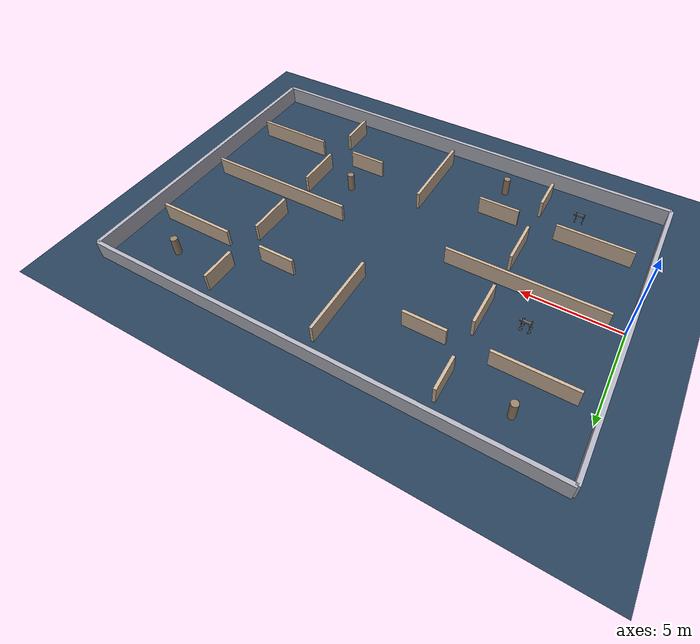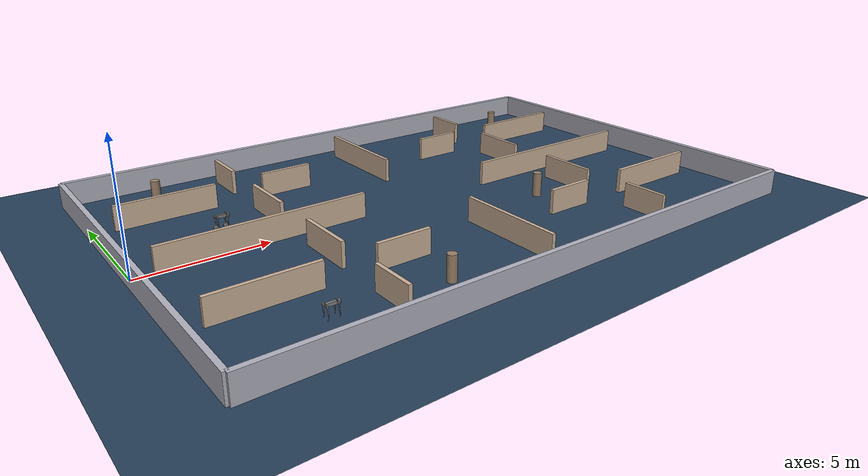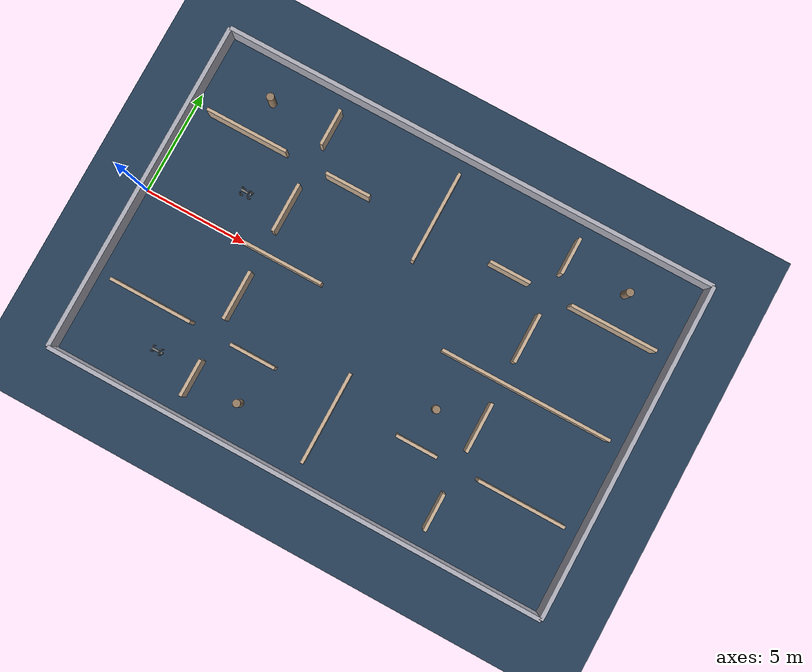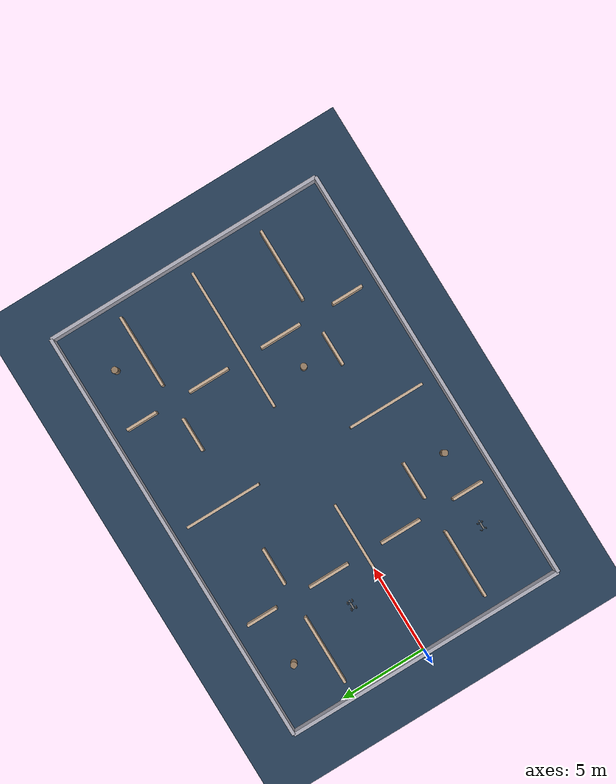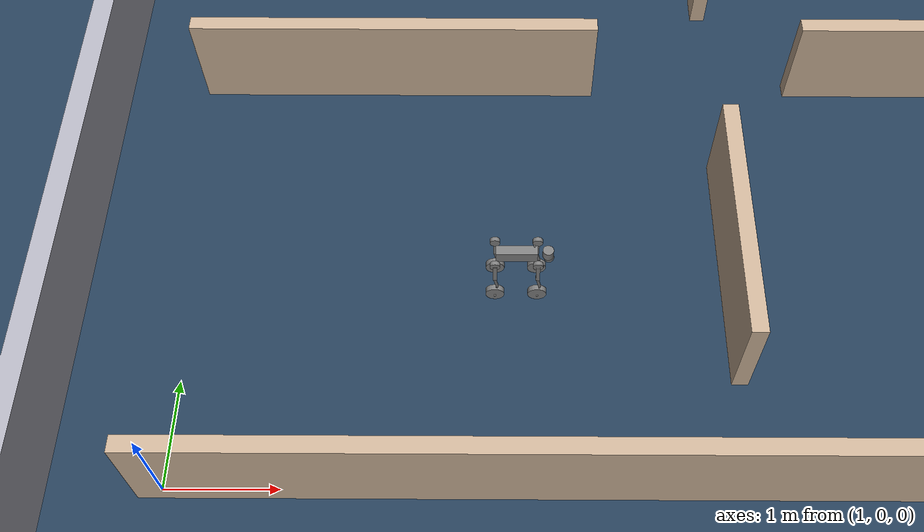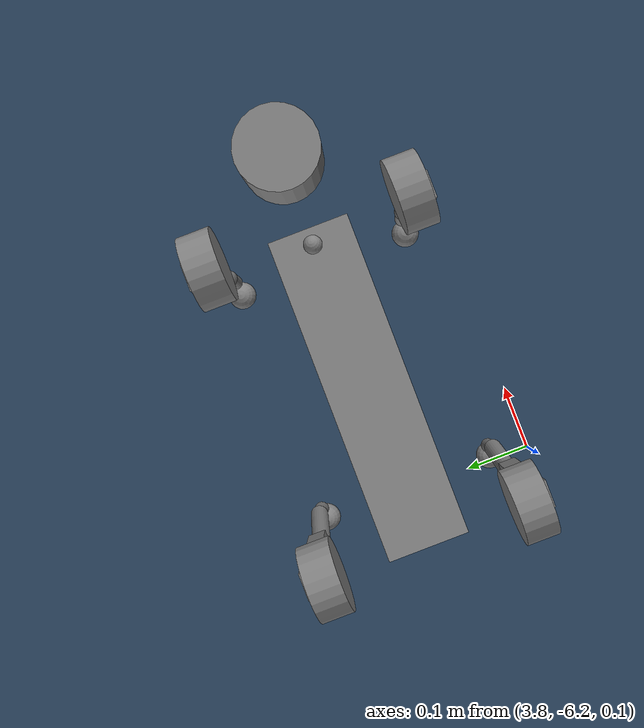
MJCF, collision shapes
<mujoco model="demo3_mixed_rooms_seed101">
  <compiler angle="radian" meshdir="../assets" autolimits="true"/>

  <option timestep="0.002" gravity="0 0 -9.81" integrator="implicitfast"
          cone="elliptic" impratio="100"/>

  <statistic center="12 0 0.5" extent="16"/>

  <visual>
    <headlight diffuse="0.6 0.6 0.6" ambient="0.3 0.3 0.3" specular="0 0 0"/>
    <rgba haze="0.15 0.25 0.35 1"/>
    <global azimuth="-130" elevation="-20" offwidth="1920" offheight="1080"/>
    <quality shadowsize="4096" offsamples="8"/>
    <map shadowscale="0.5" shadowclip="1"/>
  </visual>

  <default>
    <default class="go2">
      <geom friction="0.4" margin="0.001" condim="1"/>
      <joint axis="0 1 0" damping="0.1" armature="0.01" frictionloss="0.2"/>
      <motor ctrlrange="-23.7 23.7"/>
      <default class="abduction">
        <joint axis="1 0 0" range="-1.0472 1.0472"/>
      </default>
      <default class="hip">
        <default class="front_hip">
          <joint range="-1.5708 3.4907"/>
        </default>
        <default class="back_hip">
          <joint range="-0.5236 4.5379"/>
        </default>
      </default>
      <default class="knee">
        <joint range="-2.7227 -0.83776"/>
        <motor ctrlrange="-45.43 45.43"/>
      </default>
      <default class="visual">
        <geom type="mesh" contype="0" conaffinity="0" group="2"/>
      </default>
      <default class="collision">
        <geom group="3"/>
        <default class="foot">
          <geom size="0.022" pos="-0.002 0 -0.2264" priority="1" condim="6"
            friction="0.8 0.02 0.01"/>
        </default>
      </default>
    </default>
    <default class="go2_menagerie">
      <geom friction="0.6" margin="0.001" condim="1"/>
      <joint axis="0 1 0" damping="2" armature="0.01" frictionloss="0.2"/>
      <motor ctrlrange="-23.7 23.7"/>
      <default class="menagerie_abduction">
        <joint axis="1 0 0" range="-1.0472 1.0472"/>
      </default>
      <default class="menagerie_hip">
        <default class="menagerie_front_hip">
          <joint range="-1.5708 3.4907"/>
        </default>
        <default class="menagerie_back_hip">
          <joint range="-0.5236 4.5379"/>
        </default>
      </default>
      <default class="menagerie_knee">
        <joint range="-2.7227 -0.83776"/>
        <motor ctrlrange="-45.43 45.43"/>
      </default>
      <default class="menagerie_visual">
        <geom type="mesh" contype="0" conaffinity="0" group="2"/>
      </default>
      <default class="menagerie_collision">
        <geom group="3"/>
        <default class="menagerie_foot">
          <geom size="0.022" pos="-0.002 0 -0.213" priority="1"
                solimp="0.015 1 0.022" condim="6"
                friction="0.8 0.02 0.01"/>
        </default>
      </default>
    </default>
    <default class="world">
      <geom contype="1" conaffinity="1"/>
    </default>
  </default>

  <asset>
    <!-- Skybox -->
    <texture type="skybox" builtin="gradient" rgb1="0.3 0.5 0.7" rgb2="0 0 0"
             width="512" height="3072"/>

    <!-- Ground -->
    <texture type="2d" name="groundplane" builtin="checker" mark="edge"
             rgb1="0.2 0.3 0.4" rgb2="0.1 0.2 0.3" markrgb="0.8 0.8 0.8"
             width="300" height="300"/>
    <material name="groundplane" texture="groundplane" texuniform="true"
              texrepeat="5 5" reflectance="0.2"/>

    <!-- Robot materials -->
    <material name="metal" rgba=".9 .95 .95 1"/>
    <material name="black" rgba="0 0 0 1"/>
    <material name="white" rgba="1 1 1 1"/>
    <material name="gray" rgba="0.671705 0.692426 0.774270 1"/>

    <!-- Robot mesh assets (official Unitree OBJ) -->
    <mesh file="base_0.obj"/>
    <mesh file="base_1.obj"/>
    <mesh file="base_2.obj"/>
    <mesh file="base_3.obj"/>
    <mesh file="base_4.obj"/>
    <mesh file="hip_0.obj"/>
    <mesh file="hip_1.obj"/>
    <mesh file="thigh_0.obj"/>
    <mesh file="thigh_1.obj"/>
    <mesh file="thigh_mirror_0.obj"/>
    <mesh file="thigh_mirror_1.obj"/>
    <mesh file="calf_mirror_0.obj"/>
    <mesh file="calf_mirror_1.obj"/>
    <mesh file="calf.stl"/>
    <mesh file="calf_mirror.stl"/>
    <mesh file="foot.obj"/>
    <mesh file="wheel.stl"/>
    <!-- Menagerie Go2 calf meshes (used by robot_b Go2 body). Names avoid
         clash with Go2W's `calf` (from calf.stl). -->
    <mesh file="calf_0.obj"/>
    <mesh file="calf_1.obj"/>

    <!-- World materials -->
    <material name="wall_mat" rgba="0.7 0.7 0.75 1"/>
    <material name="divider_mat" rgba="0.8 0.7 0.6 1"/>
    <material name="green_mat" rgba="0.0 1.0 0.0 1" specular="0.3"/>
    <material name="obstacle_mat" rgba="0.6 0.5 0.4 1"/>
  </asset>

  <worldbody>
    <!-- Lighting -->
    <light pos="12 0 10" dir="0 0 -1" directional="true" diffuse="0.8 0.8 0.8"
           castshadow="true"/>

    <!-- Ground plane -->
    <geom name="ground" type="plane" size="50 50 0.1" material="groundplane"
          class="world"/>

    <!-- === Generated outer walls (24x16m, x in [0,24], y in [-8,8]) === -->
    <geom name="wall_north" type="box" pos="12.000 8.100 0.500"
          size="12.100 0.100 0.500" material="wall_mat" class="world"/>
    <geom name="wall_south" type="box" pos="12.000 -8.100 0.500"
          size="12.100 0.100 0.500" material="wall_mat" class="world"/>
    <geom name="wall_west" type="box" pos="-0.100 0.000 0.500"
          size="0.100 8.100 0.500" material="wall_mat" class="world"/>
    <geom name="wall_east" type="box" pos="24.100 0.000 0.500"
          size="0.100 8.100 0.500" material="wall_mat" class="world"/>
    <!-- Generated clean rooms maze: axis-aligned rooms, gates >= 2.0m. -->
    <geom name="generated_rooms_clean_mid_west" type="box" pos="4.900 0.000 0.500"
          size="4.100 0.075 0.500" material="divider_mat" class="world"/>
    <geom name="generated_rooms_clean_mid_east" type="box" pos="19.100 0.000 0.500"
          size="4.100 0.075 0.500" material="divider_mat" class="world"/>
    <geom name="generated_rooms_clean_mid_north" type="box" pos="12.000 5.000 0.500"
          size="0.075 2.200 0.500" material="divider_mat" class="world"/>
    <geom name="generated_rooms_clean_mid_south" type="box" pos="12.000 -5.000 0.500"
          size="0.075 2.200 0.500" material="divider_mat" class="world"/>
    <geom name="generated_rooms_clean_nw_partition_left" type="box" pos="2.800 4.400 0.500"
          size="2.000 0.075 0.500" material="divider_mat" class="world"/>
    <geom name="generated_rooms_clean_nw_partition_right" type="box" pos="7.900 4.400 0.500"
          size="1.100 0.075 0.500" material="divider_mat" class="world"/>
    <geom name="generated_rooms_clean_nw_divider_lower" type="box" pos="6.000 2.200 0.500"
          size="0.075 1.200 0.500" material="divider_mat" class="world"/>
    <geom name="generated_rooms_clean_nw_divider_upper" type="box" pos="6.000 6.300 0.500"
          size="0.075 0.900 0.500" material="divider_mat" class="world"/>
    <geom name="generated_rooms_clean_ne_partition_left" type="box" pos="16.000 4.400 0.500"
          size="1.000 0.075 0.500" material="divider_mat" class="world"/>
    <geom name="generated_rooms_clean_ne_partition_right" type="box" pos="21.100 4.400 0.500"
          size="2.100 0.075 0.500" material="divider_mat" class="world"/>
    <geom name="generated_rooms_clean_ne_divider_lower" type="box" pos="18.000 2.200 0.500"
          size="0.075 1.200 0.500" material="divider_mat" class="world"/>
    <geom name="generated_rooms_clean_ne_divider_upper" type="box" pos="18.000 6.300 0.500"
          size="0.075 0.900 0.500" material="divider_mat" class="world"/>
    <geom name="generated_rooms_clean_sw_partition_left" type="box" pos="2.800 -4.200 0.500"
          size="2.000 0.075 0.500" material="divider_mat" class="world"/>
    <geom name="generated_rooms_clean_sw_partition_right" type="box" pos="7.900 -4.200 0.500"
          size="1.100 0.075 0.500" material="divider_mat" class="world"/>
    <geom name="generated_rooms_clean_sw_divider_lower" type="box" pos="6.000 -6.300 0.500"
          size="0.075 0.900 0.500" material="divider_mat" class="world"/>
    <geom name="generated_rooms_clean_sw_divider_upper" type="box" pos="6.000 -2.200 0.500"
          size="0.075 1.200 0.500" material="divider_mat" class="world"/>
    <geom name="generated_rooms_clean_se_partition_left" type="box" pos="16.000 -4.200 0.500"
          size="1.000 0.075 0.500" material="divider_mat" class="world"/>
    <geom name="generated_rooms_clean_se_partition_right" type="box" pos="21.100 -4.200 0.500"
          size="2.100 0.075 0.500" material="divider_mat" class="world"/>
    <geom name="generated_rooms_clean_se_divider_lower" type="box" pos="18.000 -6.300 0.500"
          size="0.075 0.900 0.500" material="divider_mat" class="world"/>
    <geom name="generated_rooms_clean_se_divider_upper" type="box" pos="18.000 -2.200 0.500"
          size="0.075 1.200 0.500" material="divider_mat" class="world"/>
    <geom name="generated_rooms_clean_pillar_nw" type="cylinder" pos="3.000 6.200 0.500"
          size="0.180 0.500" material="obstacle_mat" class="world"/>
    <geom name="generated_rooms_clean_pillar_ne" type="cylinder" pos="21.000 6.100 0.500"
          size="0.180 0.500" material="obstacle_mat" class="world"/>
    <geom name="generated_rooms_clean_pillar_sw" type="cylinder" pos="8.300 -6.300 0.500"
          size="0.180 0.500" material="obstacle_mat" class="world"/>
    <geom name="generated_rooms_clean_pillar_se" type="cylinder" pos="16.000 -2.400 0.500"
          size="0.180 0.500" material="obstacle_mat" class="world"/>

    <!-- === Go2W Robot (spawn at (4, 2, 0.6) in NW quadrant) === -->
    <body name="base_link" pos="4.0 2.0 0.6" childclass="go2">
      <inertial pos="0.021112 0 -0.005366" quat="-0.000543471 0.713435 -0.00173769 0.700719"
        mass="6.921" diaginertia="0.107027 0.0980771 0.0244531"/>
      <freejoint name="root"/>

      <!-- Base visual meshes (OBJ with materials) -->
      <geom mesh="base_0" material="black" class="visual"/>
      <geom mesh="base_1" material="black" class="visual"/>
      <geom mesh="base_2" material="black" class="visual"/>
      <geom mesh="base_3" material="white" class="visual"/>
      <geom mesh="base_4" material="gray" class="visual"/>
      <!-- Base collision -->
      <geom name="base_collision" size="0.1881 0.04675 0.057" type="box" class="collision"/>
      <geom name="head_upper_collision" size="0.05 0.045" pos="0.285 0 0.01" type="cylinder" class="collision"/>
      <geom name="head_lower_collision" size="0.047" pos="0.293 0 -0.06" class="collision"/>

      <!-- Body-frame site for pose sensors (avoids inertial-frame rotation) -->
      <site name="base_link_site" pos="0 0 0" size="0.01"/>

      <!-- IMU site -->
      <site name="imu" pos="-0.02557 0 0.04232" size="0.01"/>

      <!-- Livox MID-360 LiDAR site (matches URDF: base→imu→livox_mid360_base) -->
      <!-- pos = imu_pos + livox_offset = (-0.02557+0.1870, 0, 0.04232+0.0803) -->
      <!-- Mid-360 mount tilt: pitch 0.263591 rad (15.10°) + roll -0.036809 rad. Matches real-robot calibration (scripts/real/onboard_fastlio_noetic.sh:258, 2026-04-17). quat = ROS RPY (Rz*Ry*Rx). -->
      <site name="livox_mid360" pos="0.16143 0 0.12262" quat="0.991160 -0.018244 0.131392 0.002418" size="0.01"/>

      <camera name="front_camera" pos="0.30 0 -0.01"
              xyaxes="0 -1 0 0.0872 0 0.9962"
              fovy="80" resolution="1280 720" mode="fixed"/>

      <!-- ====== Front-Left leg ====== -->
      <body name="FL_hip" pos="0.1934 0.0465 0">
        <inertial pos="-0.0054 0.00194 -0.000105" quat="0.497014 0.499245 0.505462 0.498237"
          mass="0.678" diaginertia="0.00088403 0.000596003 0.000479967"/>
        <joint name="FL_hip_joint" class="abduction"/>
        <geom mesh="hip_0" material="metal" class="visual"/>
        <geom mesh="hip_1" material="gray" class="visual"/>
        <geom name="FL_hip_collision" size="0.046 0.02" pos="0 0.08 0" quat="1 1 0 0" type="cylinder" class="collision"/>
        <body name="FL_thigh" pos="0 0.0955 0">
          <inertial pos="-0.00374 -0.0223 -0.0327" quat="0.829533 0.0847635 -0.0200632 0.551623"
            mass="1.152" diaginertia="0.00594973 0.00584149 0.000878787"/>
          <joint name="FL_thigh_joint" class="front_hip"/>
          <geom mesh="thigh_0" material="metal" class="visual"/>
          <geom mesh="thigh_1" material="gray" class="visual"/>
          <geom name="FL_thigh_collision" size="0.1065 0.01225 0.017" pos="0 0 -0.1065" quat="0.707107 0 0.707107 0"
            type="box" class="collision"/>
          <body name="FL_calf" pos="0 0 -0.213">
            <inertial pos="0.00629595 -0.000622121 -0.141417"
              quat="0.710672 0.00154099 -0.00450087 0.703508"
              mass="0.241352" diaginertia="0.0014901 0.00146356 5.31397e-05"/>
            <joint name="FL_calf_joint" class="knee"/>
            <geom mesh="calf" material="gray" class="visual"/>
            <geom name="FL_calf_upper_collision" size="0.012 0.06" pos="0.008 0 -0.06" quat="0.994493 0 -0.104807 0"
              type="cylinder" class="collision"/>
            <geom name="FL_calf_lower_collision" size="0.011 0.0325" pos="0.02 0 -0.148" quat="0.999688 0 0.0249974 0"
              type="cylinder" class="collision"/>
            <body name="FL_foot" pos="0 0 -0.2264">
              <inertial pos="-0.0 0.04 -0.0"
                quat="0.661419 0.248219 0.250051 0.662108" mass="0.98"
                diaginertia="0.003 0.0016 0.0016"/>
              <joint name="FL_foot_joint" pos="0 0 0" axis="0 1 0"/>
              <geom type="mesh" rgba="0.15 0.15 0.15 1" mesh="wheel" pos="0 0.0 0"
                quat="0.0 1.0 0.0 0.0" class="visual"/>
              <!-- Explicit named cylinder collision geom (replaces unnamed
                   mesh collision that MuJoCo was not reliably picking up
                   for wheel-vs-wall contacts). -->
              <geom name="FL_wheel_collision" type="cylinder" size="0.086 0.026"
                pos="0 0 0" quat="0.707107 0.707107 0 0"
                class="collision" condim="6" priority="1"
                friction="0.8 0.02 0.01"/>
              <site name="FL_foot_site" pos="0 0.04 0" size="0.01"/>
            </body>
          </body>
        </body>
      </body>

      <!-- ====== Front-Right leg ====== -->
      <body name="FR_hip" pos="0.1934 -0.0465 0">
        <inertial pos="-0.0054 -0.00194 -0.000105" quat="0.498237 0.505462 0.499245 0.497014"
          mass="0.678" diaginertia="0.00088403 0.000596003 0.000479967"/>
        <joint name="FR_hip_joint" class="abduction"/>
        <geom mesh="hip_0" material="metal" class="visual" quat="4.63268e-05 1 0 0"/>
        <geom mesh="hip_1" material="gray" class="visual" quat="4.63268e-05 1 0 0"/>
        <geom name="FR_hip_collision" size="0.046 0.02" pos="0 -0.08 0" quat="0.707107 0.707107 0 0" type="cylinder"
          class="collision"/>
        <body name="FR_thigh" pos="0 -0.0955 0">
          <inertial pos="-0.00374 0.0223 -0.0327" quat="0.551623 -0.0200632 0.0847635 0.829533"
            mass="1.152" diaginertia="0.00594973 0.00584149 0.000878787"/>
          <joint name="FR_thigh_joint" class="front_hip"/>
          <geom mesh="thigh_mirror_0" material="metal" class="visual"/>
          <geom mesh="thigh_mirror_1" material="gray" class="visual"/>
          <geom name="FR_thigh_collision" size="0.1065 0.01225 0.017" pos="0 0 -0.1065" quat="0.707107 0 0.707107 0"
            type="box" class="collision"/>
          <body name="FR_calf" pos="0 0 -0.213">
            <inertial pos="0.00629595 0.000622121 -0.141417"
              quat="0.703508 -0.00450087 0.00154099 0.710672"
              mass="0.241352" diaginertia="0.0014901 0.00146356 5.31397e-05"/>
            <joint name="FR_calf_joint" class="knee"/>
            <geom mesh="calf_mirror" material="gray" class="visual"/>
            <geom name="FR_calf_upper_collision" size="0.013 0.06" pos="0.01 0 -0.06" quat="0.995004 0 -0.0998334 0"
              type="cylinder" class="collision"/>
            <geom name="FR_calf_lower_collision" size="0.011 0.0325" pos="0.02 0 -0.148" quat="0.999688 0 0.0249974 0"
              type="cylinder" class="collision"/>
            <body name="FR_foot" pos="0 0 -0.2264">
              <inertial pos="-0.0 -0.04 -0.0"
                quat="0.661419 0.248219 0.250051 0.662108" mass="0.98"
                diaginertia="0.003 0.0016 0.0016"/>
              <joint name="FR_foot_joint" pos="0 0 0" axis="0 1 0"/>
              <geom type="mesh" rgba="0.15 0.15 0.15 1" mesh="wheel" pos="0 -0.0 0" class="visual"/>
              <geom name="FR_wheel_collision" type="cylinder" size="0.086 0.026"
                pos="0 0 0" quat="0.707107 0.707107 0 0"
                class="collision" condim="6" priority="1"
                friction="0.8 0.02 0.01"/>
              <site name="FR_foot_site" pos="0 -0.04 0" size="0.01"/>
            </body>
          </body>
        </body>
      </body>

      <!-- ====== Rear-Left leg ====== -->
      <body name="RL_hip" pos="-0.1934 0.0465 0">
        <inertial pos="0.0054 0.00194 -0.000105" quat="0.505462 0.498237 0.497014 0.499245"
          mass="0.678" diaginertia="0.00088403 0.000596003 0.000479967"/>
        <joint name="RL_hip_joint" class="abduction"/>
        <geom mesh="hip_0" material="metal" class="visual" quat="4.63268e-05 0 1 0"/>
        <geom mesh="hip_1" material="gray" class="visual" quat="4.63268e-05 0 1 0"/>
        <geom name="RL_hip_collision" size="0.046 0.02" pos="0 0.08 0" quat="0.707107 0.707107 0 0" type="cylinder"
          class="collision"/>
        <body name="RL_thigh" pos="0 0.0955 0">
          <inertial pos="-0.00374 -0.0223 -0.0327" quat="0.829533 0.0847635 -0.0200632 0.551623"
            mass="1.152" diaginertia="0.00594973 0.00584149 0.000878787"/>
          <joint name="RL_thigh_joint" class="back_hip"/>
          <geom mesh="thigh_0" material="metal" class="visual"/>
          <geom mesh="thigh_1" material="gray" class="visual"/>
          <geom name="RL_thigh_collision" size="0.1065 0.01225 0.017" pos="0 0 -0.1065" quat="0.707107 0 0.707107 0"
            type="box" class="collision"/>
          <body name="RL_calf" pos="0 0 -0.213">
            <inertial pos="0.00629595 -0.000622121 -0.141417"
              quat="0.710672 0.00154099 -0.00450087 0.703508"
              mass="0.241352" diaginertia="0.0014901 0.00146356 5.31397e-05"/>
            <joint name="RL_calf_joint" class="knee"/>
            <geom mesh="calf" material="gray" class="visual"/>
            <geom name="RL_calf_upper_collision" size="0.013 0.06" pos="0.01 0 -0.06" quat="0.995004 0 -0.0998334 0"
              type="cylinder" class="collision"/>
            <geom name="RL_calf_lower_collision" size="0.011 0.0325" pos="0.02 0 -0.148" quat="0.999688 0 0.0249974 0"
              type="cylinder" class="collision"/>
            <body name="RL_foot" pos="0 0 -0.2264">
              <inertial pos="-0.0 0.04 -0.0"
                quat="0.661419 0.248219 0.250051 0.662108" mass="0.98"
                diaginertia="0.003 0.0016 0.0016"/>
              <joint name="RL_foot_joint" pos="0 0 0" axis="0 1 0"/>
              <geom type="mesh" rgba="0.15 0.15 0.15 1" mesh="wheel" pos="0 0.0 0"
                quat="0.0 1.0 0.0 0.0" class="visual"/>
              <geom name="RL_wheel_collision" type="cylinder" size="0.086 0.026"
                pos="0 0 0" quat="0.707107 0.707107 0 0"
                class="collision" condim="6" priority="1"
                friction="0.8 0.02 0.01"/>
              <site name="RL_foot_site" pos="0 0.04 0" size="0.01"/>
            </body>
          </body>
        </body>
      </body>

      <!-- ====== Rear-Right leg ====== -->
      <body name="RR_hip" pos="-0.1934 -0.0465 0">
        <inertial pos="0.0054 -0.00194 -0.000105" quat="0.499245 0.497014 0.498237 0.505462"
          mass="0.678" diaginertia="0.00088403 0.000596003 0.000479967"/>
        <joint name="RR_hip_joint" class="abduction"/>
        <geom mesh="hip_0" material="metal" class="visual"
          quat="2.14617e-09 4.63268e-05 4.63268e-05 -1"/>
        <geom mesh="hip_1" material="gray" class="visual"
          quat="2.14617e-09 4.63268e-05 4.63268e-05 -1"/>
        <geom name="RR_hip_collision" size="0.046 0.02" pos="0 -0.08 0" quat="0.707107 0.707107 0 0" type="cylinder"
          class="collision"/>
        <body name="RR_thigh" pos="0 -0.0955 0">
          <inertial pos="-0.00374 0.0223 -0.0327" quat="0.551623 -0.0200632 0.0847635 0.829533"
            mass="1.152" diaginertia="0.00594973 0.00584149 0.000878787"/>
          <joint name="RR_thigh_joint" class="back_hip"/>
          <geom mesh="thigh_mirror_0" material="metal" class="visual"/>
          <geom mesh="thigh_mirror_1" material="gray" class="visual"/>
          <geom name="RR_thigh_collision" size="0.1065 0.01225 0.017" pos="0 0 -0.1065" quat="0.707107 0 0.707107 0"
            type="box" class="collision"/>
          <body name="RR_calf" pos="0 0 -0.213">
            <inertial pos="0.00629595 0.000622121 -0.141417"
              quat="0.703508 -0.00450087 0.00154099 0.710672"
              mass="0.241352" diaginertia="0.0014901 0.00146356 5.31397e-05"/>
            <joint name="RR_calf_joint" class="knee"/>
            <geom mesh="calf_mirror" material="gray" class="visual"/>
            <geom name="RR_calf_upper_collision" size="0.013 0.06" pos="0.01 0 -0.06" quat="0.995004 0 -0.0998334 0"
              type="cylinder" class="collision"/>
            <geom name="RR_calf_lower_collision" size="0.011 0.0325" pos="0.02 0 -0.148" quat="0.999688 0 0.0249974 0"
              type="cylinder" class="collision"/>
            <body name="RR_foot" pos="0 0 -0.2264">
              <inertial pos="-0.0 -0.04 -0.0"
                quat="0.661419 0.248219 0.250051 0.662108" mass="0.98"
                diaginertia="0.003 0.0016 0.0016"/>
              <joint name="RR_foot_joint" pos="0 0 0" axis="0 1 0"/>
              <geom type="mesh" rgba="0.15 0.15 0.15 1" mesh="wheel" pos="0 -0.00 0" class="visual"/>
              <geom name="RR_wheel_collision" type="cylinder" size="0.086 0.026"
                pos="0 0 0" quat="0.707107 0.707107 0 0"
                class="collision" condim="6" priority="1"
                friction="0.8 0.02 0.01"/>
              <site name="RR_foot_site" pos="0 -0.04 0" size="0.01"/>
            </body>
          </body>
        </body>
      </body>
    </body>

    <body name="b_base_link" pos="4.0 -6.0 0.5" childclass="go2_menagerie">
      <inertial pos="0.021112 0 -0.005366" quat="-0.000543471 0.713435 -0.00173769 0.700719"
        mass="6.921" diaginertia="0.107027 0.0980771 0.0244531"/>
      <freejoint name="b_root"/>

      <geom mesh="base_0" material="black" class="menagerie_visual"/>
      <geom mesh="base_1" material="black" class="menagerie_visual"/>
      <geom mesh="base_2" material="black" class="menagerie_visual"/>
      <geom mesh="base_3" material="white" class="menagerie_visual"/>
      <geom mesh="base_4" material="gray" class="menagerie_visual"/>
      <geom name="b_base_collision" size="0.1881 0.04675 0.057" type="box" class="menagerie_collision"/>
      <geom name="b_head_upper_collision" size="0.05 0.045" pos="0.285 0 0.01" type="cylinder" class="menagerie_collision"/>
      <geom name="b_head_lower_collision" size="0.047" pos="0.293 0 -0.06" class="menagerie_collision"/>

      <site name="b_base_link_site" pos="0 0 0" size="0.01"/>
      <site name="b_imu" pos="-0.02557 0 0.04232" size="0.01"/>
      <site name="b_livox_mid360" pos="0.16143 0 0.12262" quat="0.991160 -0.018244 0.131392 0.002418" size="0.01"/>

      <camera name="b_front_camera" pos="0.30 0 -0.01"
              xyaxes="0 -1 0 0.0872 0 0.9962"
              fovy="80" resolution="1280 720" mode="fixed"/>

      <body name="b_FL_hip" pos="0.1934 0.0465 0">
        <inertial pos="-0.0054 0.00194 -0.000105" quat="0.497014 0.499245 0.505462 0.498237"
          mass="0.678" diaginertia="0.00088403 0.000596003 0.000479967"/>
        <joint name="b_FL_hip_joint" class="menagerie_abduction"/>
        <geom mesh="hip_0" material="metal" class="menagerie_visual"/>
        <geom mesh="hip_1" material="gray" class="menagerie_visual"/>
        <geom name="b_FL_hip_collision" size="0.046 0.02" pos="0 0.08 0" quat="1 1 0 0"
              type="cylinder" class="menagerie_collision"/>
        <body name="b_FL_thigh" pos="0 0.0955 0">
          <inertial pos="-0.00374 -0.0223 -0.0327" quat="0.829533 0.0847635 -0.0200632 0.551623"
            mass="1.152" diaginertia="0.00594973 0.00584149 0.000878787"/>
          <joint name="b_FL_thigh_joint" class="menagerie_front_hip"/>
          <geom mesh="thigh_0" material="metal" class="menagerie_visual"/>
          <geom mesh="thigh_1" material="gray" class="menagerie_visual"/>
          <geom name="b_FL_thigh_collision" size="0.1065 0.01225 0.017" pos="0 0 -0.1065"
                quat="0.707107 0 0.707107 0" type="box" class="menagerie_collision"/>
          <body name="b_FL_calf" pos="0 0 -0.213">
            <inertial pos="0.00629595 -0.000622121 -0.141417"
              quat="0.710672 0.00154099 -0.00450087 0.703508"
              mass="0.241352" diaginertia="0.0014901 0.00146356 5.31397e-05"/>
            <joint name="b_FL_calf_joint" class="menagerie_knee"/>
            <geom mesh="calf_0" material="gray" class="menagerie_visual"/>
            <geom mesh="calf_1" material="black" class="menagerie_visual"/>
            <geom name="b_FL_calf_upper_collision" size="0.012 0.06" pos="0.008 0 -0.06"
                  quat="0.994493 0 -0.104807 0" type="cylinder" class="menagerie_collision"/>
            <geom name="b_FL_calf_lower_collision" size="0.011 0.0325" pos="0.02 0 -0.148"
                  quat="0.999688 0 0.0249974 0" type="cylinder" class="menagerie_collision"/>
            <geom pos="0 0 -0.213" mesh="foot" class="menagerie_visual" material="black"/>
            <geom name="b_FL" class="menagerie_foot"/>
            <body name="b_FL_foot" pos="-0.002 0 -0.213">
              <inertial pos="0 0 0" quat="1 0 0 0" mass="0.06"
                        diaginertia="3e-5 3e-5 3e-5"/>
              <site name="b_FL_foot_site" pos="0 0 0" size="0.01"/>
            </body>
          </body>
        </body>
      </body>

      <body name="b_FR_hip" pos="0.1934 -0.0465 0">
        <inertial pos="-0.0054 -0.00194 -0.000105" quat="0.498237 0.505462 0.499245 0.497014"
          mass="0.678" diaginertia="0.00088403 0.000596003 0.000479967"/>
        <joint name="b_FR_hip_joint" class="menagerie_abduction"/>
        <geom mesh="hip_0" material="metal" class="menagerie_visual" quat="4.63268e-05 1 0 0"/>
        <geom mesh="hip_1" material="gray" class="menagerie_visual" quat="4.63268e-05 1 0 0"/>
        <geom name="b_FR_hip_collision" size="0.046 0.02" pos="0 -0.08 0"
              quat="0.707107 0.707107 0 0" type="cylinder" class="menagerie_collision"/>
        <body name="b_FR_thigh" pos="0 -0.0955 0">
          <inertial pos="-0.00374 0.0223 -0.0327" quat="0.551623 -0.0200632 0.0847635 0.829533"
            mass="1.152" diaginertia="0.00594973 0.00584149 0.000878787"/>
          <joint name="b_FR_thigh_joint" class="menagerie_front_hip"/>
          <geom mesh="thigh_mirror_0" material="metal" class="menagerie_visual"/>
          <geom mesh="thigh_mirror_1" material="gray" class="menagerie_visual"/>
          <geom name="b_FR_thigh_collision" size="0.1065 0.01225 0.017" pos="0 0 -0.1065"
                quat="0.707107 0 0.707107 0" type="box" class="menagerie_collision"/>
          <body name="b_FR_calf" pos="0 0 -0.213">
            <inertial pos="0.00629595 0.000622121 -0.141417"
              quat="0.703508 -0.00450087 0.00154099 0.710672"
              mass="0.241352" diaginertia="0.0014901 0.00146356 5.31397e-05"/>
            <joint name="b_FR_calf_joint" class="menagerie_knee"/>
            <geom mesh="calf_mirror_0" material="gray" class="menagerie_visual"/>
            <geom mesh="calf_mirror_1" material="black" class="menagerie_visual"/>
            <geom name="b_FR_calf_upper_collision" size="0.013 0.06" pos="0.01 0 -0.06"
                  quat="0.995004 0 -0.0998334 0" type="cylinder" class="menagerie_collision"/>
            <geom name="b_FR_calf_lower_collision" size="0.011 0.0325" pos="0.02 0 -0.148"
                  quat="0.999688 0 0.0249974 0" type="cylinder" class="menagerie_collision"/>
            <geom pos="0 0 -0.213" mesh="foot" class="menagerie_visual" material="black"/>
            <geom name="b_FR" class="menagerie_foot"/>
            <body name="b_FR_foot" pos="-0.002 0 -0.213">
              <inertial pos="0 0 0" quat="1 0 0 0" mass="0.06"
                        diaginertia="3e-5 3e-5 3e-5"/>
              <site name="b_FR_foot_site" pos="0 0 0" size="0.01"/>
            </body>
          </body>
        </body>
      </body>

      <body name="b_RL_hip" pos="-0.1934 0.0465 0">
        <inertial pos="0.0054 0.00194 -0.000105" quat="0.505462 0.498237 0.497014 0.499245"
          mass="0.678" diaginertia="0.00088403 0.000596003 0.000479967"/>
        <joint name="b_RL_hip_joint" class="menagerie_abduction"/>
        <geom mesh="hip_0" material="metal" class="menagerie_visual" quat="4.63268e-05 0 1 0"/>
        <geom mesh="hip_1" material="gray" class="menagerie_visual" quat="4.63268e-05 0 1 0"/>
        <geom name="b_RL_hip_collision" size="0.046 0.02" pos="0 0.08 0"
              quat="0.707107 0.707107 0 0" type="cylinder" class="menagerie_collision"/>
        <body name="b_RL_thigh" pos="0 0.0955 0">
          <inertial pos="-0.00374 -0.0223 -0.0327" quat="0.829533 0.0847635 -0.0200632 0.551623"
            mass="1.152" diaginertia="0.00594973 0.00584149 0.000878787"/>
          <joint name="b_RL_thigh_joint" class="menagerie_back_hip"/>
          <geom mesh="thigh_0" material="metal" class="menagerie_visual"/>
          <geom mesh="thigh_1" material="gray" class="menagerie_visual"/>
          <geom name="b_RL_thigh_collision" size="0.1065 0.01225 0.017" pos="0 0 -0.1065"
                quat="0.707107 0 0.707107 0" type="box" class="menagerie_collision"/>
          <body name="b_RL_calf" pos="0 0 -0.213">
            <inertial pos="0.00629595 -0.000622121 -0.141417"
              quat="0.710672 0.00154099 -0.00450087 0.703508"
              mass="0.241352" diaginertia="0.0014901 0.00146356 5.31397e-05"/>
            <joint name="b_RL_calf_joint" class="menagerie_knee"/>
            <geom mesh="calf_0" material="gray" class="menagerie_visual"/>
            <geom mesh="calf_1" material="black" class="menagerie_visual"/>
            <geom name="b_RL_calf_upper_collision" size="0.013 0.06" pos="0.01 0 -0.06"
                  quat="0.995004 0 -0.0998334 0" type="cylinder" class="menagerie_collision"/>
            <geom name="b_RL_calf_lower_collision" size="0.011 0.0325" pos="0.02 0 -0.148"
                  quat="0.999688 0 0.0249974 0" type="cylinder" class="menagerie_collision"/>
            <geom pos="0 0 -0.213" mesh="foot" class="menagerie_visual" material="black"/>
            <geom name="b_RL" class="menagerie_foot"/>
            <body name="b_RL_foot" pos="-0.002 0 -0.213">
              <inertial pos="0 0 0" quat="1 0 0 0" mass="0.06"
                        diaginertia="3e-5 3e-5 3e-5"/>
              <site name="b_RL_foot_site" pos="0 0 0" size="0.01"/>
            </body>
          </body>
        </body>
      </body>

      <body name="b_RR_hip" pos="-0.1934 -0.0465 0">
        <inertial pos="0.0054 -0.00194 -0.000105" quat="0.499245 0.497014 0.498237 0.505462"
          mass="0.678" diaginertia="0.00088403 0.000596003 0.000479967"/>
        <joint name="b_RR_hip_joint" class="menagerie_abduction"/>
        <geom mesh="hip_0" material="metal" class="menagerie_visual"
              quat="2.14617e-09 4.63268e-05 4.63268e-05 -1"/>
        <geom mesh="hip_1" material="gray" class="menagerie_visual"
              quat="2.14617e-09 4.63268e-05 4.63268e-05 -1"/>
        <geom name="b_RR_hip_collision" size="0.046 0.02" pos="0 -0.08 0"
              quat="0.707107 0.707107 0 0" type="cylinder" class="menagerie_collision"/>
        <body name="b_RR_thigh" pos="0 -0.0955 0">
          <inertial pos="-0.00374 0.0223 -0.0327" quat="0.551623 -0.0200632 0.0847635 0.829533"
            mass="1.152" diaginertia="0.00594973 0.00584149 0.000878787"/>
          <joint name="b_RR_thigh_joint" class="menagerie_back_hip"/>
          <geom mesh="thigh_mirror_0" material="metal" class="menagerie_visual"/>
          <geom mesh="thigh_mirror_1" material="gray" class="menagerie_visual"/>
          <geom name="b_RR_thigh_collision" size="0.1065 0.01225 0.017" pos="0 0 -0.1065"
                quat="0.707107 0 0.707107 0" type="box" class="menagerie_collision"/>
          <body name="b_RR_calf" pos="0 0 -0.213">
            <inertial pos="0.00629595 0.000622121 -0.141417"
              quat="0.703508 -0.00450087 0.00154099 0.710672"
              mass="0.241352" diaginertia="0.0014901 0.00146356 5.31397e-05"/>
            <joint name="b_RR_calf_joint" class="menagerie_knee"/>
            <geom mesh="calf_mirror_0" material="gray" class="menagerie_visual"/>
            <geom mesh="calf_mirror_1" material="black" class="menagerie_visual"/>
            <geom name="b_RR_calf_upper_collision" size="0.013 0.06" pos="0.01 0 -0.06"
                  quat="0.995004 0 -0.0998334 0" type="cylinder" class="menagerie_collision"/>
            <geom name="b_RR_calf_lower_collision" size="0.011 0.0325" pos="0.02 0 -0.148"
                  quat="0.999688 0 0.0249974 0" type="cylinder" class="menagerie_collision"/>
            <geom pos="0 0 -0.213" mesh="foot" class="menagerie_visual" material="black"/>
            <geom name="b_RR" class="menagerie_foot"/>
            <body name="b_RR_foot" pos="-0.002 0 -0.213">
              <inertial pos="0 0 0" quat="1 0 0 0" mass="0.06"
                        diaginertia="3e-5 3e-5 3e-5"/>
              <site name="b_RR_foot_site" pos="0 0 0" size="0.01"/>
            </body>
          </body>
        </body>
      </body>
    </body>

  </worldbody>

  <!-- Actuators: effort for leg joints, velocity for wheel joints -->
  <actuator>
    <motor class="abduction" name="FL_hip" joint="FL_hip_joint"/>
    <motor class="front_hip" name="FL_thigh" joint="FL_thigh_joint"/>
    <motor class="knee" name="FL_calf" joint="FL_calf_joint"/>

    <motor class="abduction" name="FR_hip" joint="FR_hip_joint"/>
    <motor class="front_hip" name="FR_thigh" joint="FR_thigh_joint"/>
    <motor class="knee" name="FR_calf" joint="FR_calf_joint"/>

    <motor class="abduction" name="RL_hip" joint="RL_hip_joint"/>
    <motor class="back_hip" name="RL_thigh" joint="RL_thigh_joint"/>
    <motor class="knee" name="RL_calf" joint="RL_calf_joint"/>

    <motor class="abduction" name="RR_hip" joint="RR_hip_joint"/>
    <motor class="back_hip" name="RR_thigh" joint="RR_thigh_joint"/>
    <motor class="knee" name="RR_calf" joint="RR_calf_joint"/>

    <velocity name="FL_wheel" joint="FL_foot_joint" ctrlrange="-15 15" kv="5.0"/>
    <velocity name="FR_wheel" joint="FR_foot_joint" ctrlrange="-15 15" kv="5.0"/>
    <velocity name="RL_wheel" joint="RL_foot_joint" ctrlrange="-15 15" kv="5.0"/>
    <velocity name="RR_wheel" joint="RR_foot_joint" ctrlrange="-15 15" kv="5.0"/>
    <!-- === Robot B actuators === -->
    <motor class="abduction" name="b_FL_hip" joint="b_FL_hip_joint"/>
    <motor class="front_hip" name="b_FL_thigh" joint="b_FL_thigh_joint"/>
    <motor class="knee" name="b_FL_calf" joint="b_FL_calf_joint"/>

    <motor class="abduction" name="b_FR_hip" joint="b_FR_hip_joint"/>
    <motor class="front_hip" name="b_FR_thigh" joint="b_FR_thigh_joint"/>
    <motor class="knee" name="b_FR_calf" joint="b_FR_calf_joint"/>

    <motor class="abduction" name="b_RL_hip" joint="b_RL_hip_joint"/>
    <motor class="back_hip" name="b_RL_thigh" joint="b_RL_thigh_joint"/>
    <motor class="knee" name="b_RL_calf" joint="b_RL_calf_joint"/>

    <motor class="abduction" name="b_RR_hip" joint="b_RR_hip_joint"/>
    <motor class="back_hip" name="b_RR_thigh" joint="b_RR_thigh_joint"/>
    <motor class="knee" name="b_RR_calf" joint="b_RR_calf_joint"/>

    <!-- robot_b is Menagerie Go2 (non-wheeled): no b_*_wheel velocity actuators. -->
  </actuator>

  <!-- Sensors -->
  <sensor>
    <!-- IMU (accel + gyro only; framequat removed to avoid DFKI creating
         a bogus pose sensor for "imu" that reads garbage position data) -->
    <accelerometer name="imu_accel" site="imu"/>
    <gyro name="imu_gyro" site="imu"/>

    <!-- Foot contact (touch sensors) -->
    <touch name="FL_foot_contact" site="FL_foot_site"/>
    <touch name="FR_foot_contact" site="FR_foot_site"/>
    <touch name="RL_foot_contact" site="RL_foot_site"/>
    <touch name="RR_foot_contact" site="RR_foot_site"/>

    <!-- Base body state (ground truth) — use site to get body frame, not inertial frame -->
    <framepos name="base_pos" objtype="site" objname="base_link_site"/>
    <framequat name="base_quat" objtype="site" objname="base_link_site"/>
    <framelinvel name="base_linvel" objtype="site" objname="base_link_site"/>
    <frameangvel name="base_angvel" objtype="site" objname="base_link_site"/>
    <!-- === Robot B sensors === -->
    <!-- IMU (accel + gyro only; framequat removed to avoid DFKI creating
         a bogus pose sensor for "imu" that reads garbage position data) -->
    <accelerometer name="b_imu_accel" site="b_imu"/>
    <gyro name="b_imu_gyro" site="b_imu"/>

    <!-- Foot contact (touch sensors) -->
    <touch name="b_FL_foot_contact" site="b_FL_foot_site"/>
    <touch name="b_FR_foot_contact" site="b_FR_foot_site"/>
    <touch name="b_RL_foot_contact" site="b_RL_foot_site"/>
    <touch name="b_RR_foot_contact" site="b_RR_foot_site"/>

    <!-- Base body state (ground truth) — use site to get body frame, not inertial frame -->
    <framepos name="b_base_pos" objtype="site" objname="b_base_link_site"/>
    <framequat name="b_base_quat" objtype="site" objname="b_base_link_site"/>
    <framelinvel name="b_base_linvel" objtype="site" objname="b_base_link_site"/>
    <frameangvel name="b_base_angvel" objtype="site" objname="b_base_link_site"/>
  </sensor>
</mujoco>
